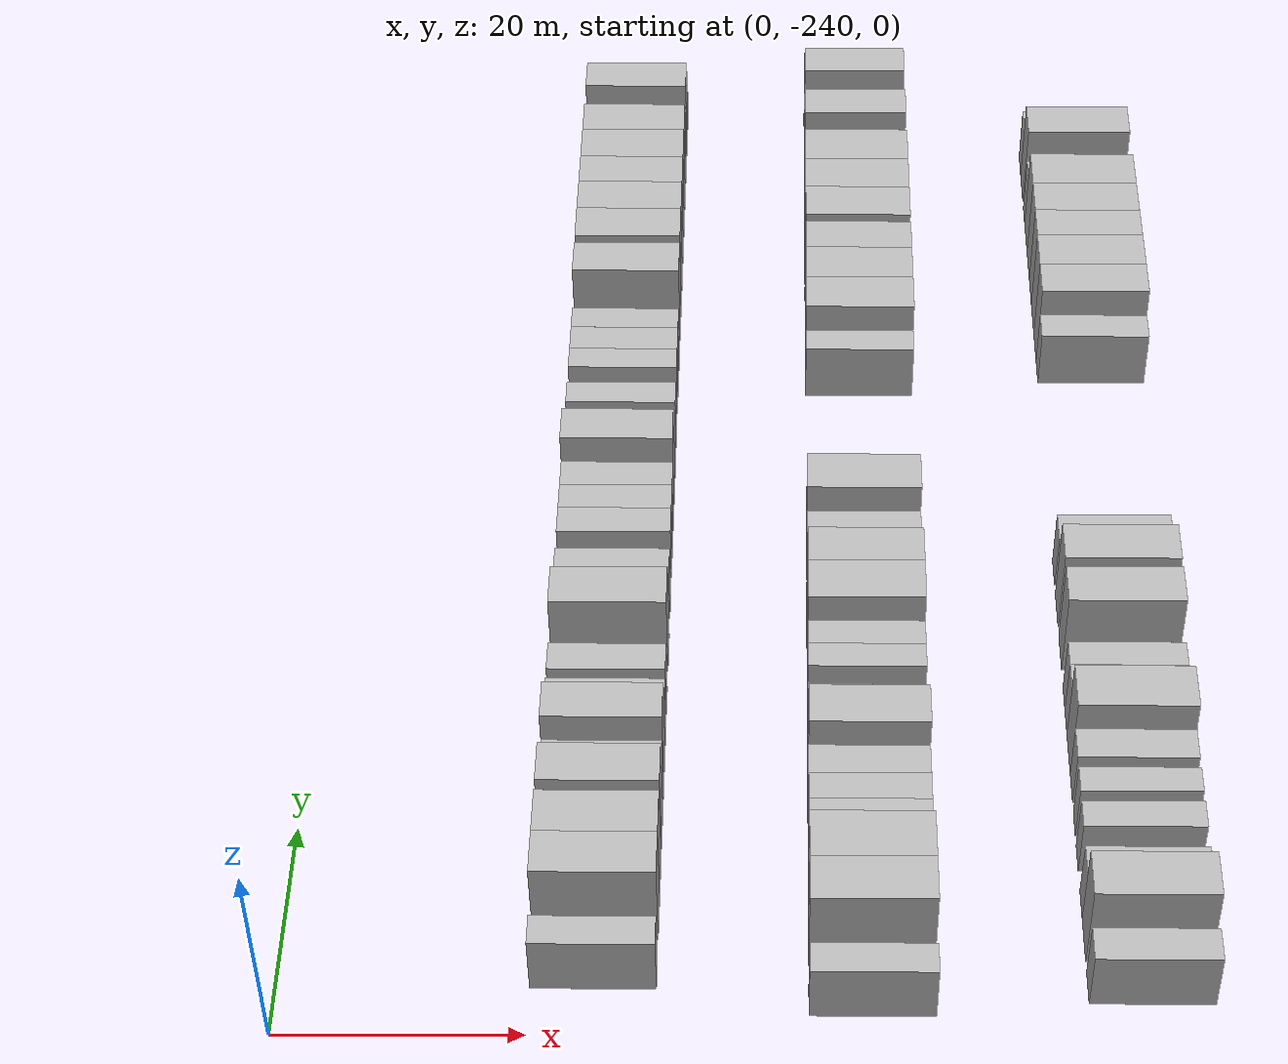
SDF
<sdf version="1.6">
 <world name="default">
  <model name="building_41">
   <static>1</static>
   <pose>25.0000 -234.2131 0 0.000000 0.000000 0.000000</pose>
   <link name="link">
    <pose>0 0 3.00 0 0 0</pose>
    <collision name="collision"><geometry><box><size>10.0000 2.6801 6.0000</size></box></geometry></collision>
    <visual name="visual">
     <cast_shadows>0</cast_shadows>
     <geometry><box><size>10.0000 2.6801 6.0000</size></box></geometry>
     <material>
      <script>
       <uri>model://HANNAS_wall/materials/scripts</uri>
       <uri>model://HANNAS_wall/materials/textures</uri>
       <name>vrc/HANNAS_wall</name>
      </script>
     </material>
    </visual>
   </link>
  </model>
  <model name="building_42">
   <static>1</static>
   <pose>25.0000 -228.8729 0 0.000000 0.000000 0.000000</pose>
   <link name="link">
    <pose>0 0 4.50 0 0 0</pose>
    <collision name="collision"><geometry><box><size>10.0000 4.0002 9.0000</size></box></geometry></collision>
    <visual name="visual">
     <cast_shadows>0</cast_shadows>
     <geometry><box><size>10.0000 4.0002 9.0000</size></box></geometry>
     <material>
      <script>
       <uri>model://HANNAS_wall/materials/scripts</uri>
       <uri>model://HANNAS_wall/materials/textures</uri>
       <name>vrc/HANNAS_wall</name>
      </script>
     </material>
    </visual>
   </link>
  </model>
  <model name="building_43">
   <static>1</static>
   <pose>25.0000 -224.8315 0 0.000000 0.000000 0.000000</pose>
   <link name="link">
    <pose>0 0 4.50 0 0 0</pose>
    <collision name="collision"><geometry><box><size>10.0000 4.0826 9.0000</size></box></geometry></collision>
    <visual name="visual">
     <cast_shadows>0</cast_shadows>
     <geometry><box><size>10.0000 4.0826 9.0000</size></box></geometry>
     <material>
      <script>
       <uri>model://HANNAS_wall/materials/scripts</uri>
       <uri>model://HANNAS_wall/materials/textures</uri>
       <name>vrc/HANNAS_wall</name>
      </script>
     </material>
    </visual>
   </link>
  </model>
  <model name="building_44">
   <static>1</static>
   <pose>25.0000 -219.8721 0 0.000000 0.000000 0.000000</pose>
   <link name="link">
    <pose>0 0 4.50 0 0 0</pose>
    <collision name="collision"><geometry><box><size>10.0000 3.8362 9.0000</size></box></geometry></collision>
    <visual name="visual">
     <cast_shadows>0</cast_shadows>
     <geometry><box><size>10.0000 3.8362 9.0000</size></box></geometry>
     <material>
      <script>
       <uri>model://HANNAS_wall/materials/scripts</uri>
       <uri>model://HANNAS_wall/materials/textures</uri>
       <name>vrc/HANNAS_wall</name>
      </script>
     </material>
    </visual>
   </link>
  </model>
  <model name="building_45">
   <static>1</static>
   <pose>25.0000 -216.5849 0 0.000000 0.000000 0.000000</pose>
   <link name="link">
    <pose>0 0 3.00 0 0 0</pose>
    <collision name="collision"><geometry><box><size>10.0000 2.7382 6.0000</size></box></geometry></collision>
    <visual name="visual">
     <cast_shadows>0</cast_shadows>
     <geometry><box><size>10.0000 2.7382 6.0000</size></box></geometry>
     <material>
      <script>
       <uri>model://HANNAS_wall/materials/scripts</uri>
       <uri>model://HANNAS_wall/materials/textures</uri>
       <name>vrc/HANNAS_wall</name>
      </script>
     </material>
    </visual>
   </link>
  </model>
  <model name="building_46">
   <static>1</static>
   <pose>25.0000 -213.3697 0 0.000000 0.000000 0.000000</pose>
   <link name="link">
    <pose>0 0 4.50 0 0 0</pose>
    <collision name="collision"><geometry><box><size>10.0000 3.6921 9.0000</size></box></geometry></collision>
    <visual name="visual">
     <cast_shadows>0</cast_shadows>
     <geometry><box><size>10.0000 3.6921 9.0000</size></box></geometry>
     <material>
      <script>
       <uri>model://HANNAS_wall/materials/scripts</uri>
       <uri>model://HANNAS_wall/materials/textures</uri>
       <name>vrc/HANNAS_wall</name>
      </script>
     </material>
    </visual>
   </link>
  </model>
  <model name="building_47">
   <static>1</static>
   <pose>25.0000 -210.0258 0 0.000000 0.000000 0.000000</pose>
   <link name="link">
    <pose>0 0 3.00 0 0 0</pose>
    <collision name="collision"><geometry><box><size>10.0000 2.9958 6.0000</size></box></geometry></collision>
    <visual name="visual">
     <cast_shadows>0</cast_shadows>
     <geometry><box><size>10.0000 2.9958 6.0000</size></box></geometry>
     <material>
      <script>
       <uri>model://HANNAS_wall/materials/scripts</uri>
       <uri>model://HANNAS_wall/materials/textures</uri>
       <name>vrc/HANNAS_wall</name>
      </script>
     </material>
    </visual>
   </link>
  </model>
  <model name="building_48">
   <static>1</static>
   <pose>25.0000 -206.0988 0 0.000000 0.000000 0.000000</pose>
   <link name="link">
    <pose>0 0 3.00 0 0 0</pose>
    <collision name="collision"><geometry><box><size>10.0000 2.8581 6.0000</size></box></geometry></collision>
    <visual name="visual">
     <cast_shadows>0</cast_shadows>
     <geometry><box><size>10.0000 2.8581 6.0000</size></box></geometry>
     <material>
      <script>
       <uri>model://HANNAS_wall/materials/scripts</uri>
       <uri>model://HANNAS_wall/materials/textures</uri>
       <name>vrc/HANNAS_wall</name>
      </script>
     </material>
    </visual>
   </link>
  </model>
  <model name="building_49">
   <static>1</static>
   <pose>25.0000 -200.6526 0 0.000000 0.000000 0.000000</pose>
   <link name="link">
    <pose>0 0 4.50 0 0 0</pose>
    <collision name="collision"><geometry><box><size>10.0000 4.0343 9.0000</size></box></geometry></collision>
    <visual name="visual">
     <cast_shadows>0</cast_shadows>
     <geometry><box><size>10.0000 4.0343 9.0000</size></box></geometry>
     <material>
      <script>
       <uri>model://HANNAS_wall/materials/scripts</uri>
       <uri>model://HANNAS_wall/materials/textures</uri>
       <name>vrc/HANNAS_wall</name>
      </script>
     </material>
    </visual>
   </link>
  </model>
  <model name="building_50">
   <static>1</static>
   <pose>25.0000 -195.1668 0 0.000000 0.000000 0.000000</pose>
   <link name="link">
    <pose>0 0 3.00 0 0 0</pose>
    <collision name="collision"><geometry><box><size>10.0000 2.9372 6.0000</size></box></geometry></collision>
    <visual name="visual">
     <cast_shadows>0</cast_shadows>
     <geometry><box><size>10.0000 2.9372 6.0000</size></box></geometry>
     <material>
      <script>
       <uri>model://HANNAS_wall/materials/scripts</uri>
       <uri>model://HANNAS_wall/materials/textures</uri>
       <name>vrc/HANNAS_wall</name>
      </script>
     </material>
    </visual>
   </link>
  </model>
  <model name="building_51">
   <static>1</static>
   <pose>25.0000 -190.2452 0 0.000000 0.000000 0.000000</pose>
   <link name="link">
    <pose>0 0 3.00 0 0 0</pose>
    <collision name="collision"><geometry><box><size>10.0000 2.9060 6.0000</size></box></geometry></collision>
    <visual name="visual">
     <cast_shadows>0</cast_shadows>
     <geometry><box><size>10.0000 2.9060 6.0000</size></box></geometry>
     <material>
      <script>
       <uri>model://HANNAS_wall/materials/scripts</uri>
       <uri>model://HANNAS_wall/materials/textures</uri>
       <name>vrc/HANNAS_wall</name>
      </script>
     </material>
    </visual>
   </link>
  </model>
  <model name="building_52">
   <static>1</static>
   <pose>25.0000 -187.3861 0 0.000000 0.000000 0.000000</pose>
   <link name="link">
    <pose>0 0 3.00 0 0 0</pose>
    <collision name="collision"><geometry><box><size>10.0000 2.8123 6.0000</size></box></geometry></collision>
    <visual name="visual">
     <cast_shadows>0</cast_shadows>
     <geometry><box><size>10.0000 2.8123 6.0000</size></box></geometry>
     <material>
      <script>
       <uri>model://HANNAS_wall/materials/scripts</uri>
       <uri>model://HANNAS_wall/materials/textures</uri>
       <name>vrc/HANNAS_wall</name>
      </script>
     </material>
    </visual>
   </link>
  </model>
  <model name="building_53">
   <static>1</static>
   <pose>25.0000 -184.5567 0 0.000000 0.000000 0.000000</pose>
   <link name="link">
    <pose>0 0 3.00 0 0 0</pose>
    <collision name="collision"><geometry><box><size>10.0000 2.8465 6.0000</size></box></geometry></collision>
    <visual name="visual">
     <cast_shadows>0</cast_shadows>
     <geometry><box><size>10.0000 2.8465 6.0000</size></box></geometry>
     <material>
      <script>
       <uri>model://HANNAS_wall/materials/scripts</uri>
       <uri>model://HANNAS_wall/materials/textures</uri>
       <name>vrc/HANNAS_wall</name>
      </script>
     </material>
    </visual>
   </link>
  </model>
  <model name="building_54">
   <static>1</static>
   <pose>25.0000 -181.2828 0 0.000000 0.000000 0.000000</pose>
   <link name="link">
    <pose>0 0 4.50 0 0 0</pose>
    <collision name="collision"><geometry><box><size>10.0000 3.7012 9.0000</size></box></geometry></collision>
    <visual name="visual">
     <cast_shadows>0</cast_shadows>
     <geometry><box><size>10.0000 3.7012 9.0000</size></box></geometry>
     <material>
      <script>
       <uri>model://HANNAS_wall/materials/scripts</uri>
       <uri>model://HANNAS_wall/materials/textures</uri>
       <name>vrc/HANNAS_wall</name>
      </script>
     </material>
    </visual>
   </link>
  </model>
  <model name="building_55">
   <static>1</static>
   <pose>25.0000 -177.9561 0 0.000000 0.000000 0.000000</pose>
   <link name="link">
    <pose>0 0 3.00 0 0 0</pose>
    <collision name="collision"><geometry><box><size>10.0000 2.9522 6.0000</size></box></geometry></collision>
    <visual name="visual">
     <cast_shadows>0</cast_shadows>
     <geometry><box><size>10.0000 2.9522 6.0000</size></box></geometry>
     <material>
      <script>
       <uri>model://HANNAS_wall/materials/scripts</uri>
       <uri>model://HANNAS_wall/materials/textures</uri>
       <name>vrc/HANNAS_wall</name>
      </script>
     </material>
    </visual>
   </link>
  </model>
  <model name="building_56">
   <static>1</static>
   <pose>25.0000 -174.1771 0 0.000000 0.000000 0.000000</pose>
   <link name="link">
    <pose>0 0 3.00 0 0 0</pose>
    <collision name="collision"><geometry><box><size>10.0000 2.6057 6.0000</size></box></geometry></collision>
    <visual name="visual">
     <cast_shadows>0</cast_shadows>
     <geometry><box><size>10.0000 2.6057 6.0000</size></box></geometry>
     <material>
      <script>
       <uri>model://HANNAS_wall/materials/scripts</uri>
       <uri>model://HANNAS_wall/materials/textures</uri>
       <name>vrc/HANNAS_wall</name>
      </script>
     </material>
    </visual>
   </link>
  </model>
  <model name="building_57">
   <static>1</static>
   <pose>25.0000 -169.6165 0 0.000000 0.000000 0.000000</pose>
   <link name="link">
    <pose>0 0 3.00 0 0 0</pose>
    <collision name="collision"><geometry><box><size>10.0000 2.5156 6.0000</size></box></geometry></collision>
    <visual name="visual">
     <cast_shadows>0</cast_shadows>
     <geometry><box><size>10.0000 2.5156 6.0000</size></box></geometry>
     <material>
      <script>
       <uri>model://HANNAS_wall/materials/scripts</uri>
       <uri>model://HANNAS_wall/materials/textures</uri>
       <name>vrc/HANNAS_wall</name>
      </script>
     </material>
    </visual>
   </link>
  </model>
  <model name="building_58">
   <static>1</static>
   <pose>25.0000 -166.9035 0 0.000000 0.000000 0.000000</pose>
   <link name="link">
    <pose>0 0 3.00 0 0 0</pose>
    <collision name="collision"><geometry><box><size>10.0000 2.9104 6.0000</size></box></geometry></collision>
    <visual name="visual">
     <cast_shadows>0</cast_shadows>
     <geometry><box><size>10.0000 2.9104 6.0000</size></box></geometry>
     <material>
      <script>
       <uri>model://HANNAS_wall/materials/scripts</uri>
       <uri>model://HANNAS_wall/materials/textures</uri>
       <name>vrc/HANNAS_wall</name>
      </script>
     </material>
    </visual>
   </link>
  </model>
  <model name="building_59">
   <static>1</static>
   <pose>25.0000 -164.1506 0 0.000000 0.000000 0.000000</pose>
   <link name="link">
    <pose>0 0 3.00 0 0 0</pose>
    <collision name="collision"><geometry><box><size>10.0000 2.5953 6.0000</size></box></geometry></collision>
    <visual name="visual">
     <cast_shadows>0</cast_shadows>
     <geometry><box><size>10.0000 2.5953 6.0000</size></box></geometry>
     <material>
      <script>
       <uri>model://HANNAS_wall/materials/scripts</uri>
       <uri>model://HANNAS_wall/materials/textures</uri>
       <name>vrc/HANNAS_wall</name>
      </script>
     </material>
    </visual>
   </link>
  </model>
  <model name="building_60">
   <static>1</static>
   <pose>25.0000 -158.8898 0 0.000000 0.000000 0.000000</pose>
   <link name="link">
    <pose>0 0 4.50 0 0 0</pose>
    <collision name="collision"><geometry><box><size>10.0000 3.9264 9.0000</size></box></geometry></collision>
    <visual name="visual">
     <cast_shadows>0</cast_shadows>
     <geometry><box><size>10.0000 3.9264 9.0000</size></box></geometry>
     <material>
      <script>
       <uri>model://HANNAS_wall/materials/scripts</uri>
       <uri>model://HANNAS_wall/materials/textures</uri>
       <name>vrc/HANNAS_wall</name>
      </script>
     </material>
    </visual>
   </link>
  </model>
  <model name="building_61">
   <static>1</static>
   <pose>25.0000 -153.9136 0 0.000000 0.000000 0.000000</pose>
   <link name="link">
    <pose>0 0 4.50 0 0 0</pose>
    <collision name="collision"><geometry><box><size>10.0000 4.0259 9.0000</size></box></geometry></collision>
    <visual name="visual">
     <cast_shadows>0</cast_shadows>
     <geometry><box><size>10.0000 4.0259 9.0000</size></box></geometry>
     <material>
      <script>
       <uri>model://HANNAS_wall/materials/scripts</uri>
       <uri>model://HANNAS_wall/materials/textures</uri>
       <name>vrc/HANNAS_wall</name>
      </script>
     </material>
    </visual>
   </link>
  </model>
  <model name="building_62">
   <static>1</static>
   <pose>25.0000 -149.9300 0 0.000000 0.000000 0.000000</pose>
   <link name="link">
    <pose>0 0 4.50 0 0 0</pose>
    <collision name="collision"><geometry><box><size>10.0000 3.9413 9.0000</size></box></geometry></collision>
    <visual name="visual">
     <cast_shadows>0</cast_shadows>
     <geometry><box><size>10.0000 3.9413 9.0000</size></box></geometry>
     <material>
      <script>
       <uri>model://HANNAS_wall/materials/scripts</uri>
       <uri>model://HANNAS_wall/materials/textures</uri>
       <name>vrc/HANNAS_wall</name>
      </script>
     </material>
    </visual>
   </link>
  </model>
  <model name="building_63">
   <static>1</static>
   <pose>25.0000 -146.0602 0 0.000000 0.000000 0.000000</pose>
   <link name="link">
    <pose>0 0 4.50 0 0 0</pose>
    <collision name="collision"><geometry><box><size>10.0000 3.7984 9.0000</size></box></geometry></collision>
    <visual name="visual">
     <cast_shadows>0</cast_shadows>
     <geometry><box><size>10.0000 3.7984 9.0000</size></box></geometry>
     <material>
      <script>
       <uri>model://HANNAS_wall/materials/scripts</uri>
       <uri>model://HANNAS_wall/materials/textures</uri>
       <name>vrc/HANNAS_wall</name>
      </script>
     </material>
    </visual>
   </link>
  </model>
  <model name="building_64">
   <static>1</static>
   <pose>25.0000 -142.1053 0 0.000000 0.000000 0.000000</pose>
   <link name="link">
    <pose>0 0 4.50 0 0 0</pose>
    <collision name="collision"><geometry><box><size>10.0000 4.1114 9.0000</size></box></geometry></collision>
    <visual name="visual">
     <cast_shadows>0</cast_shadows>
     <geometry><box><size>10.0000 4.1114 9.0000</size></box></geometry>
     <material>
      <script>
       <uri>model://HANNAS_wall/materials/scripts</uri>
       <uri>model://HANNAS_wall/materials/textures</uri>
       <name>vrc/HANNAS_wall</name>
      </script>
     </material>
    </visual>
   </link>
  </model>
  <model name="building_65">
   <static>1</static>
   <pose>25.0000 -138.0776 0 0.000000 0.000000 0.000000</pose>
   <link name="link">
    <pose>0 0 4.50 0 0 0</pose>
    <collision name="collision"><geometry><box><size>10.0000 3.9439 9.0000</size></box></geometry></collision>
    <visual name="visual">
     <cast_shadows>0</cast_shadows>
     <geometry><box><size>10.0000 3.9439 9.0000</size></box></geometry>
     <material>
      <script>
       <uri>model://HANNAS_wall/materials/scripts</uri>
       <uri>model://HANNAS_wall/materials/textures</uri>
       <name>vrc/HANNAS_wall</name>
      </script>
     </material>
    </visual>
   </link>
  </model>
  <model name="building_66">
   <static>1</static>
   <pose>25.0000 -134.6477 0 0.000000 0.000000 0.000000</pose>
   <link name="link">
    <pose>0 0 3.00 0 0 0</pose>
    <collision name="collision"><geometry><box><size>10.0000 2.9160 6.0000</size></box></geometry></collision>
    <visual name="visual">
     <cast_shadows>0</cast_shadows>
     <geometry><box><size>10.0000 2.9160 6.0000</size></box></geometry>
     <material>
      <script>
       <uri>model://HANNAS_wall/materials/scripts</uri>
       <uri>model://HANNAS_wall/materials/textures</uri>
       <name>vrc/HANNAS_wall</name>
      </script>
     </material>
    </visual>
   </link>
  </model>
  <model name="building_67">
   <static>1</static>
   <pose>25.0000 -131.3195 0 0.000000 0.000000 0.000000</pose>
   <link name="link">
    <pose>0 0 4.50 0 0 0</pose>
    <collision name="collision"><geometry><box><size>10.0000 3.7402 9.0000</size></box></geometry></collision>
    <visual name="visual">
     <cast_shadows>0</cast_shadows>
     <geometry><box><size>10.0000 3.7402 9.0000</size></box></geometry>
     <material>
      <script>
       <uri>model://HANNAS_wall/materials/scripts</uri>
       <uri>model://HANNAS_wall/materials/textures</uri>
       <name>vrc/HANNAS_wall</name>
      </script>
     </material>
    </visual>
   </link>
  </model>
  <model name="building_68">
   <static>1</static>
   <pose>25.0000 -128.2058 0 0.000000 0.000000 0.000000</pose>
   <link name="link">
    <pose>0 0 3.00 0 0 0</pose>
    <collision name="collision"><geometry><box><size>10.0000 2.4872 6.0000</size></box></geometry></collision>
    <visual name="visual">
     <cast_shadows>0</cast_shadows>
     <geometry><box><size>10.0000 2.4872 6.0000</size></box></geometry>
     <material>
      <script>
       <uri>model://HANNAS_wall/materials/scripts</uri>
       <uri>model://HANNAS_wall/materials/textures</uri>
       <name>vrc/HANNAS_wall</name>
      </script>
     </material>
    </visual>
   </link>
  </model>
  <model name="building_238">
   <static>1</static>
   <pose>47.0000 -236.5884 0 0.000000 0.000000 0.000000</pose>
   <link name="link">
    <pose>0 0 3.00 0 0 0</pose>
    <collision name="collision"><geometry><box><size>10.0000 2.7244 6.0000</size></box></geometry></collision>
    <visual name="visual">
     <cast_shadows>0</cast_shadows>
     <geometry><box><size>10.0000 2.7244 6.0000</size></box></geometry>
     <material>
      <script>
       <uri>model://HANNAS_wall/materials/scripts</uri>
       <uri>model://HANNAS_wall/materials/textures</uri>
       <name>vrc/HANNAS_wall</name>
      </script>
     </material>
    </visual>
   </link>
  </model>
  <model name="building_239">
   <static>1</static>
   <pose>47.0000 -231.1611 0 0.000000 0.000000 0.000000</pose>
   <link name="link">
    <pose>0 0 4.50 0 0 0</pose>
    <collision name="collision"><geometry><box><size>10.0000 4.1301 9.0000</size></box></geometry></collision>
    <visual name="visual">
     <cast_shadows>0</cast_shadows>
     <geometry><box><size>10.0000 4.1301 9.0000</size></box></geometry>
     <material>
      <script>
       <uri>model://HANNAS_wall/materials/scripts</uri>
       <uri>model://HANNAS_wall/materials/textures</uri>
       <name>vrc/HANNAS_wall</name>
      </script>
     </material>
    </visual>
   </link>
  </model>
  <model name="building_240">
   <static>1</static>
   <pose>47.0000 -226.8623 0 0.000000 0.000000 0.000000</pose>
   <link name="link">
    <pose>0 0 4.50 0 0 0</pose>
    <collision name="collision"><geometry><box><size>10.0000 4.4674 9.0000</size></box></geometry></collision>
    <visual name="visual">
     <cast_shadows>0</cast_shadows>
     <geometry><box><size>10.0000 4.4674 9.0000</size></box></geometry>
     <material>
      <script>
       <uri>model://HANNAS_wall/materials/scripts</uri>
       <uri>model://HANNAS_wall/materials/textures</uri>
       <name>vrc/HANNAS_wall</name>
      </script>
     </material>
    </visual>
   </link>
  </model>
  <model name="building_241">
   <static>1</static>
   <pose>47.0000 -222.3399 0 0.000000 0.000000 0.000000</pose>
   <link name="link">
    <pose>0 0 3.00 0 0 0</pose>
    <collision name="collision"><geometry><box><size>10.0000 2.5774 6.0000</size></box></geometry></collision>
    <visual name="visual">
     <cast_shadows>0</cast_shadows>
     <geometry><box><size>10.0000 2.5774 6.0000</size></box></geometry>
     <material>
      <script>
       <uri>model://HANNAS_wall/materials/scripts</uri>
       <uri>model://HANNAS_wall/materials/textures</uri>
       <name>vrc/HANNAS_wall</name>
      </script>
     </material>
    </visual>
   </link>
  </model>
  <model name="building_242">
   <static>1</static>
   <pose>47.0000 -219.7334 0 0.000000 0.000000 0.000000</pose>
   <link name="link">
    <pose>0 0 3.00 0 0 0</pose>
    <collision name="collision"><geometry><box><size>10.0000 2.6355 6.0000</size></box></geometry></collision>
    <visual name="visual">
     <cast_shadows>0</cast_shadows>
     <geometry><box><size>10.0000 2.6355 6.0000</size></box></geometry>
     <material>
      <script>
       <uri>model://HANNAS_wall/materials/scripts</uri>
       <uri>model://HANNAS_wall/materials/textures</uri>
       <name>vrc/HANNAS_wall</name>
      </script>
     </material>
    </visual>
   </link>
  </model>
  <model name="building_243">
   <static>1</static>
   <pose>47.0000 -216.9742 0 0.000000 0.000000 0.000000</pose>
   <link name="link">
    <pose>0 0 3.00 0 0 0</pose>
    <collision name="collision"><geometry><box><size>10.0000 2.8829 6.0000</size></box></geometry></collision>
    <visual name="visual">
     <cast_shadows>0</cast_shadows>
     <geometry><box><size>10.0000 2.8829 6.0000</size></box></geometry>
     <material>
      <script>
       <uri>model://HANNAS_wall/materials/scripts</uri>
       <uri>model://HANNAS_wall/materials/textures</uri>
       <name>vrc/HANNAS_wall</name>
      </script>
     </material>
    </visual>
   </link>
  </model>
  <model name="building_244">
   <static>1</static>
   <pose>47.0000 -213.5619 0 0.000000 0.000000 0.000000</pose>
   <link name="link">
    <pose>0 0 4.50 0 0 0</pose>
    <collision name="collision"><geometry><box><size>10.0000 3.9416 9.0000</size></box></geometry></collision>
    <visual name="visual">
     <cast_shadows>0</cast_shadows>
     <geometry><box><size>10.0000 3.9416 9.0000</size></box></geometry>
     <material>
      <script>
       <uri>model://HANNAS_wall/materials/scripts</uri>
       <uri>model://HANNAS_wall/materials/textures</uri>
       <name>vrc/HANNAS_wall</name>
      </script>
     </material>
    </visual>
   </link>
  </model>
  <model name="building_245">
   <static>1</static>
   <pose>47.0000 -210.2989 0 0.000000 0.000000 0.000000</pose>
   <link name="link">
    <pose>0 0 3.00 0 0 0</pose>
    <collision name="collision"><geometry><box><size>10.0000 2.5842 6.0000</size></box></geometry></collision>
    <visual name="visual">
     <cast_shadows>0</cast_shadows>
     <geometry><box><size>10.0000 2.5842 6.0000</size></box></geometry>
     <material>
      <script>
       <uri>model://HANNAS_wall/materials/scripts</uri>
       <uri>model://HANNAS_wall/materials/textures</uri>
       <name>vrc/HANNAS_wall</name>
      </script>
     </material>
    </visual>
   </link>
  </model>
  <model name="building_246">
   <static>1</static>
   <pose>47.0000 -205.7408 0 0.000000 0.000000 0.000000</pose>
   <link name="link">
    <pose>0 0 3.00 0 0 0</pose>
    <collision name="collision"><geometry><box><size>10.0000 2.5321 6.0000</size></box></geometry></collision>
    <visual name="visual">
     <cast_shadows>0</cast_shadows>
     <geometry><box><size>10.0000 2.5321 6.0000</size></box></geometry>
     <material>
      <script>
       <uri>model://HANNAS_wall/materials/scripts</uri>
       <uri>model://HANNAS_wall/materials/textures</uri>
       <name>vrc/HANNAS_wall</name>
      </script>
     </material>
    </visual>
   </link>
  </model>
  <model name="building_247">
   <static>1</static>
   <pose>47.0000 -203.1868 0 0.000000 0.000000 0.000000</pose>
   <link name="link">
    <pose>0 0 3.00 0 0 0</pose>
    <collision name="collision"><geometry><box><size>10.0000 2.5758 6.0000</size></box></geometry></collision>
    <visual name="visual">
     <cast_shadows>0</cast_shadows>
     <geometry><box><size>10.0000 2.5758 6.0000</size></box></geometry>
     <material>
      <script>
       <uri>model://HANNAS_wall/materials/scripts</uri>
       <uri>model://HANNAS_wall/materials/textures</uri>
       <name>vrc/HANNAS_wall</name>
      </script>
     </material>
    </visual>
   </link>
  </model>
  <model name="building_248">
   <static>1</static>
   <pose>47.0000 -199.7753 0 0.000000 0.000000 0.000000</pose>
   <link name="link">
    <pose>0 0 4.50 0 0 0</pose>
    <collision name="collision"><geometry><box><size>10.0000 4.2473 9.0000</size></box></geometry></collision>
    <visual name="visual">
     <cast_shadows>0</cast_shadows>
     <geometry><box><size>10.0000 4.2473 9.0000</size></box></geometry>
     <material>
      <script>
       <uri>model://HANNAS_wall/materials/scripts</uri>
       <uri>model://HANNAS_wall/materials/textures</uri>
       <name>vrc/HANNAS_wall</name>
      </script>
     </material>
    </visual>
   </link>
  </model>
  <model name="building_249">
   <static>1</static>
   <pose>47.0000 -195.7400 0 0.000000 0.000000 0.000000</pose>
   <link name="link">
    <pose>0 0 4.50 0 0 0</pose>
    <collision name="collision"><geometry><box><size>10.0000 3.8234 9.0000</size></box></geometry></collision>
    <visual name="visual">
     <cast_shadows>0</cast_shadows>
     <geometry><box><size>10.0000 3.8234 9.0000</size></box></geometry>
     <material>
      <script>
       <uri>model://HANNAS_wall/materials/scripts</uri>
       <uri>model://HANNAS_wall/materials/textures</uri>
       <name>vrc/HANNAS_wall</name>
      </script>
     </material>
    </visual>
   </link>
  </model>
  <model name="building_250">
   <static>1</static>
   <pose>47.0000 -190.4297 0 0.000000 0.000000 0.000000</pose>
   <link name="link">
    <pose>0 0 3.00 0 0 0</pose>
    <collision name="collision"><geometry><box><size>10.0000 2.7971 6.0000</size></box></geometry></collision>
    <visual name="visual">
     <cast_shadows>0</cast_shadows>
     <geometry><box><size>10.0000 2.7971 6.0000</size></box></geometry>
     <material>
      <script>
       <uri>model://HANNAS_wall/materials/scripts</uri>
       <uri>model://HANNAS_wall/materials/textures</uri>
       <name>vrc/HANNAS_wall</name>
      </script>
     </material>
    </visual>
   </link>
  </model>
  <model name="building_251">
   <static>1</static>
   <pose>47.0000 -186.9717 0 0.000000 0.000000 0.000000</pose>
   <link name="link">
    <pose>0 0 4.50 0 0 0</pose>
    <collision name="collision"><geometry><box><size>10.0000 4.1189 9.0000</size></box></geometry></collision>
    <visual name="visual">
     <cast_shadows>0</cast_shadows>
     <geometry><box><size>10.0000 4.1189 9.0000</size></box></geometry>
     <material>
      <script>
       <uri>model://HANNAS_wall/materials/scripts</uri>
       <uri>model://HANNAS_wall/materials/textures</uri>
       <name>vrc/HANNAS_wall</name>
      </script>
     </material>
    </visual>
   </link>
  </model>
  <model name="building_252">
   <static>1</static>
   <pose>47.0000 -166.9960 0 0.000000 0.000000 0.000000</pose>
   <link name="link">
    <pose>0 0 3.00 0 0 0</pose>
    <collision name="collision"><geometry><box><size>10.0000 2.6108 6.0000</size></box></geometry></collision>
    <visual name="visual">
     <cast_shadows>0</cast_shadows>
     <geometry><box><size>10.0000 2.6108 6.0000</size></box></geometry>
     <material>
      <script>
       <uri>model://HANNAS_wall/materials/scripts</uri>
       <uri>model://HANNAS_wall/materials/textures</uri>
       <name>vrc/HANNAS_wall</name>
      </script>
     </material>
    </visual>
   </link>
  </model>
  <model name="building_253">
   <static>1</static>
   <pose>47.0000 -163.6091 0 0.000000 0.000000 0.000000</pose>
   <link name="link">
    <pose>0 0 4.50 0 0 0</pose>
    <collision name="collision"><geometry><box><size>10.0000 4.1630 9.0000</size></box></geometry></collision>
    <visual name="visual">
     <cast_shadows>0</cast_shadows>
     <geometry><box><size>10.0000 4.1630 9.0000</size></box></geometry>
     <material>
      <script>
       <uri>model://HANNAS_wall/materials/scripts</uri>
       <uri>model://HANNAS_wall/materials/textures</uri>
       <name>vrc/HANNAS_wall</name>
      </script>
     </material>
    </visual>
   </link>
  </model>
  <model name="building_254">
   <static>1</static>
   <pose>47.0000 -159.4356 0 0.000000 0.000000 0.000000</pose>
   <link name="link">
    <pose>0 0 4.50 0 0 0</pose>
    <collision name="collision"><geometry><box><size>10.0000 4.1840 9.0000</size></box></geometry></collision>
    <visual name="visual">
     <cast_shadows>0</cast_shadows>
     <geometry><box><size>10.0000 4.1840 9.0000</size></box></geometry>
     <material>
      <script>
       <uri>model://HANNAS_wall/materials/scripts</uri>
       <uri>model://HANNAS_wall/materials/textures</uri>
       <name>vrc/HANNAS_wall</name>
      </script>
     </material>
    </visual>
   </link>
  </model>
  <model name="building_255">
   <static>1</static>
   <pose>47.0000 -155.5027 0 0.000000 0.000000 0.000000</pose>
   <link name="link">
    <pose>0 0 4.50 0 0 0</pose>
    <collision name="collision"><geometry><box><size>10.0000 3.6817 9.0000</size></box></geometry></collision>
    <visual name="visual">
     <cast_shadows>0</cast_shadows>
     <geometry><box><size>10.0000 3.6817 9.0000</size></box></geometry>
     <material>
      <script>
       <uri>model://HANNAS_wall/materials/scripts</uri>
       <uri>model://HANNAS_wall/materials/textures</uri>
       <name>vrc/HANNAS_wall</name>
      </script>
     </material>
    </visual>
   </link>
  </model>
  <model name="building_256">
   <static>1</static>
   <pose>47.0000 -150.5961 0 0.000000 0.000000 0.000000</pose>
   <link name="link">
    <pose>0 0 4.50 0 0 0</pose>
    <collision name="collision"><geometry><box><size>10.0000 4.1316 9.0000</size></box></geometry></collision>
    <visual name="visual">
     <cast_shadows>0</cast_shadows>
     <geometry><box><size>10.0000 4.1316 9.0000</size></box></geometry>
     <material>
      <script>
       <uri>model://HANNAS_wall/materials/scripts</uri>
       <uri>model://HANNAS_wall/materials/textures</uri>
       <name>vrc/HANNAS_wall</name>
      </script>
     </material>
    </visual>
   </link>
  </model>
  <model name="building_257">
   <static>1</static>
   <pose>47.0000 -146.4375 0 0.000000 0.000000 0.000000</pose>
   <link name="link">
    <pose>0 0 4.50 0 0 0</pose>
    <collision name="collision"><geometry><box><size>10.0000 4.1856 9.0000</size></box></geometry></collision>
    <visual name="visual">
     <cast_shadows>0</cast_shadows>
     <geometry><box><size>10.0000 4.1856 9.0000</size></box></geometry>
     <material>
      <script>
       <uri>model://HANNAS_wall/materials/scripts</uri>
       <uri>model://HANNAS_wall/materials/textures</uri>
       <name>vrc/HANNAS_wall</name>
      </script>
     </material>
    </visual>
   </link>
  </model>
  <model name="building_258">
   <static>1</static>
   <pose>47.0000 -142.1067 0 0.000000 0.000000 0.000000</pose>
   <link name="link">
    <pose>0 0 4.50 0 0 0</pose>
    <collision name="collision"><geometry><box><size>10.0000 4.4760 9.0000</size></box></geometry></collision>
    <visual name="visual">
     <cast_shadows>0</cast_shadows>
     <geometry><box><size>10.0000 4.4760 9.0000</size></box></geometry>
     <material>
      <script>
       <uri>model://HANNAS_wall/materials/scripts</uri>
       <uri>model://HANNAS_wall/materials/textures</uri>
       <name>vrc/HANNAS_wall</name>
      </script>
     </material>
    </visual>
   </link>
  </model>
  <model name="building_259">
   <static>1</static>
   <pose>47.0000 -138.5502 0 0.000000 0.000000 0.000000</pose>
   <link name="link">
    <pose>0 0 3.00 0 0 0</pose>
    <collision name="collision"><geometry><box><size>10.0000 2.6370 6.0000</size></box></geometry></collision>
    <visual name="visual">
     <cast_shadows>0</cast_shadows>
     <geometry><box><size>10.0000 2.6370 6.0000</size></box></geometry>
     <material>
      <script>
       <uri>model://HANNAS_wall/materials/scripts</uri>
       <uri>model://HANNAS_wall/materials/textures</uri>
       <name>vrc/HANNAS_wall</name>
      </script>
     </material>
    </visual>
   </link>
  </model>
  <model name="building_260">
   <static>1</static>
   <pose>47.0000 -135.3782 0 0.000000 0.000000 0.000000</pose>
   <link name="link">
    <pose>0 0 4.50 0 0 0</pose>
    <collision name="collision"><geometry><box><size>10.0000 3.7070 9.0000</size></box></geometry></collision>
    <visual name="visual">
     <cast_shadows>0</cast_shadows>
     <geometry><box><size>10.0000 3.7070 9.0000</size></box></geometry>
     <material>
      <script>
       <uri>model://HANNAS_wall/materials/scripts</uri>
       <uri>model://HANNAS_wall/materials/textures</uri>
       <name>vrc/HANNAS_wall</name>
      </script>
     </material>
    </visual>
   </link>
  </model>
  <model name="building_261">
   <static>1</static>
   <pose>47.0000 -132.0292 0 0.000000 0.000000 0.000000</pose>
   <link name="link">
    <pose>0 0 3.00 0 0 0</pose>
    <collision name="collision"><geometry><box><size>10.0000 2.9909 6.0000</size></box></geometry></collision>
    <visual name="visual">
     <cast_shadows>0</cast_shadows>
     <geometry><box><size>10.0000 2.9909 6.0000</size></box></geometry>
     <material>
      <script>
       <uri>model://HANNAS_wall/materials/scripts</uri>
       <uri>model://HANNAS_wall/materials/textures</uri>
       <name>vrc/HANNAS_wall</name>
      </script>
     </material>
    </visual>
   </link>
  </model>
  <model name="building_262">
   <static>1</static>
   <pose>47.0000 -128.6882 0 0.000000 0.000000 0.000000</pose>
   <link name="link">
    <pose>0 0 4.50 0 0 0</pose>
    <collision name="collision"><geometry><box><size>10.0000 3.6912 9.0000</size></box></geometry></collision>
    <visual name="visual">
     <cast_shadows>0</cast_shadows>
     <geometry><box><size>10.0000 3.6912 9.0000</size></box></geometry>
     <material>
      <script>
       <uri>model://HANNAS_wall/materials/scripts</uri>
       <uri>model://HANNAS_wall/materials/textures</uri>
       <name>vrc/HANNAS_wall</name>
      </script>
     </material>
    </visual>
   </link>
  </model>
  <model name="building_420">
   <static>1</static>
   <pose>69.0000 -235.1509 0 0.000000 0.000000 0.000000</pose>
   <link name="link">
    <pose>0 0 3.00 0 0 0</pose>
    <collision name="collision"><geometry><box><size>10.0000 2.9880 6.0000</size></box></geometry></collision>
    <visual name="visual">
     <cast_shadows>0</cast_shadows>
     <geometry><box><size>10.0000 2.9880 6.0000</size></box></geometry>
     <material>
      <script>
       <uri>model://HANNAS_wall/materials/scripts</uri>
       <uri>model://HANNAS_wall/materials/textures</uri>
       <name>vrc/HANNAS_wall</name>
      </script>
     </material>
    </visual>
   </link>
  </model>
  <model name="building_421">
   <static>1</static>
   <pose>69.0000 -230.5720 0 0.000000 0.000000 0.000000</pose>
   <link name="link">
    <pose>0 0 4.50 0 0 0</pose>
    <collision name="collision"><geometry><box><size>10.0000 4.1699 9.0000</size></box></geometry></collision>
    <visual name="visual">
     <cast_shadows>0</cast_shadows>
     <geometry><box><size>10.0000 4.1699 9.0000</size></box></geometry>
     <material>
      <script>
       <uri>model://HANNAS_wall/materials/scripts</uri>
       <uri>model://HANNAS_wall/materials/textures</uri>
       <name>vrc/HANNAS_wall</name>
      </script>
     </material>
    </visual>
   </link>
  </model>
  <model name="building_422">
   <static>1</static>
   <pose>69.0000 -227.1068 0 0.000000 0.000000 0.000000</pose>
   <link name="link">
    <pose>0 0 3.00 0 0 0</pose>
    <collision name="collision"><geometry><box><size>10.0000 2.7604 6.0000</size></box></geometry></collision>
    <visual name="visual">
     <cast_shadows>0</cast_shadows>
     <geometry><box><size>10.0000 2.7604 6.0000</size></box></geometry>
     <material>
      <script>
       <uri>model://HANNAS_wall/materials/scripts</uri>
       <uri>model://HANNAS_wall/materials/textures</uri>
       <name>vrc/HANNAS_wall</name>
      </script>
     </material>
    </visual>
   </link>
  </model>
  <model name="building_423">
   <static>1</static>
   <pose>69.0000 -222.4321 0 0.000000 0.000000 0.000000</pose>
   <link name="link">
    <pose>0 0 3.00 0 0 0</pose>
    <collision name="collision"><geometry><box><size>10.0000 2.5891 6.0000</size></box></geometry></collision>
    <visual name="visual">
     <cast_shadows>0</cast_shadows>
     <geometry><box><size>10.0000 2.5891 6.0000</size></box></geometry>
     <material>
      <script>
       <uri>model://HANNAS_wall/materials/scripts</uri>
       <uri>model://HANNAS_wall/materials/textures</uri>
       <name>vrc/HANNAS_wall</name>
      </script>
     </material>
    </visual>
   </link>
  </model>
  <model name="building_424">
   <static>1</static>
   <pose>69.0000 -218.8948 0 0.000000 0.000000 0.000000</pose>
   <link name="link">
    <pose>0 0 3.00 0 0 0</pose>
    <collision name="collision"><geometry><box><size>10.0000 2.4855 6.0000</size></box></geometry></collision>
    <visual name="visual">
     <cast_shadows>0</cast_shadows>
     <geometry><box><size>10.0000 2.4855 6.0000</size></box></geometry>
     <material>
      <script>
       <uri>model://HANNAS_wall/materials/scripts</uri>
       <uri>model://HANNAS_wall/materials/textures</uri>
       <name>vrc/HANNAS_wall</name>
      </script>
     </material>
    </visual>
   </link>
  </model>
  <model name="building_425">
   <static>1</static>
   <pose>69.0000 -215.1544 0 0.000000 0.000000 0.000000</pose>
   <link name="link">
    <pose>0 0 3.00 0 0 0</pose>
    <collision name="collision"><geometry><box><size>10.0000 2.9952 6.0000</size></box></geometry></collision>
    <visual name="visual">
     <cast_shadows>0</cast_shadows>
     <geometry><box><size>10.0000 2.9952 6.0000</size></box></geometry>
     <material>
      <script>
       <uri>model://HANNAS_wall/materials/scripts</uri>
       <uri>model://HANNAS_wall/materials/textures</uri>
       <name>vrc/HANNAS_wall</name>
      </script>
     </material>
    </visual>
   </link>
  </model>
  <model name="building_426">
   <static>1</static>
   <pose>69.0000 -211.4967 0 0.000000 0.000000 0.000000</pose>
   <link name="link">
    <pose>0 0 4.50 0 0 0</pose>
    <collision name="collision"><geometry><box><size>10.0000 4.3202 9.0000</size></box></geometry></collision>
    <visual name="visual">
     <cast_shadows>0</cast_shadows>
     <geometry><box><size>10.0000 4.3202 9.0000</size></box></geometry>
     <material>
      <script>
       <uri>model://HANNAS_wall/materials/scripts</uri>
       <uri>model://HANNAS_wall/materials/textures</uri>
       <name>vrc/HANNAS_wall</name>
      </script>
     </material>
    </visual>
   </link>
  </model>
  <model name="building_427">
   <static>1</static>
   <pose>69.0000 -208.0073 0 0.000000 0.000000 0.000000</pose>
   <link name="link">
    <pose>0 0 3.00 0 0 0</pose>
    <collision name="collision"><geometry><box><size>10.0000 2.6585 6.0000</size></box></geometry></collision>
    <visual name="visual">
     <cast_shadows>0</cast_shadows>
     <geometry><box><size>10.0000 2.6585 6.0000</size></box></geometry>
     <material>
      <script>
       <uri>model://HANNAS_wall/materials/scripts</uri>
       <uri>model://HANNAS_wall/materials/textures</uri>
       <name>vrc/HANNAS_wall</name>
      </script>
     </material>
    </visual>
   </link>
  </model>
  <model name="building_428">
   <static>1</static>
   <pose>69.0000 -205.4085 0 0.000000 0.000000 0.000000</pose>
   <link name="link">
    <pose>0 0 3.00 0 0 0</pose>
    <collision name="collision"><geometry><box><size>10.0000 2.5392 6.0000</size></box></geometry></collision>
    <visual name="visual">
     <cast_shadows>0</cast_shadows>
     <geometry><box><size>10.0000 2.5392 6.0000</size></box></geometry>
     <material>
      <script>
       <uri>model://HANNAS_wall/materials/scripts</uri>
       <uri>model://HANNAS_wall/materials/textures</uri>
       <name>vrc/HANNAS_wall</name>
      </script>
     </material>
    </visual>
   </link>
  </model>
  <model name="building_429">
   <static>1</static>
   <pose>69.0000 -200.1948 0 0.000000 0.000000 0.000000</pose>
   <link name="link">
    <pose>0 0 4.50 0 0 0</pose>
    <collision name="collision"><geometry><box><size>10.0000 3.8882 9.0000</size></box></geometry></collision>
    <visual name="visual">
     <cast_shadows>0</cast_shadows>
     <geometry><box><size>10.0000 3.8882 9.0000</size></box></geometry>
     <material>
      <script>
       <uri>model://HANNAS_wall/materials/scripts</uri>
       <uri>model://HANNAS_wall/materials/textures</uri>
       <name>vrc/HANNAS_wall</name>
      </script>
     </material>
    </visual>
   </link>
  </model>
  <model name="building_430">
   <static>1</static>
   <pose>69.0000 -195.2744 0 0.000000 0.000000 0.000000</pose>
   <link name="link">
    <pose>0 0 4.50 0 0 0</pose>
    <collision name="collision"><geometry><box><size>10.0000 3.9527 9.0000</size></box></geometry></collision>
    <visual name="visual">
     <cast_shadows>0</cast_shadows>
     <geometry><box><size>10.0000 3.9527 9.0000</size></box></geometry>
     <material>
      <script>
       <uri>model://HANNAS_wall/materials/scripts</uri>
       <uri>model://HANNAS_wall/materials/textures</uri>
       <name>vrc/HANNAS_wall</name>
      </script>
     </material>
    </visual>
   </link>
  </model>
  <model name="building_431">
   <static>1</static>
   <pose>69.0000 -190.8033 0 0.000000 0.000000 0.000000</pose>
   <link name="link">
    <pose>0 0 3.00 0 0 0</pose>
    <collision name="collision"><geometry><box><size>10.0000 2.9895 6.0000</size></box></geometry></collision>
    <visual name="visual">
     <cast_shadows>0</cast_shadows>
     <geometry><box><size>10.0000 2.9895 6.0000</size></box></geometry>
     <material>
      <script>
       <uri>model://HANNAS_wall/materials/scripts</uri>
       <uri>model://HANNAS_wall/materials/textures</uri>
       <name>vrc/HANNAS_wall</name>
      </script>
     </material>
    </visual>
   </link>
  </model>
  <model name="building_432">
   <static>1</static>
   <pose>69.0000 -164.8912 0 0.000000 0.000000 0.000000</pose>
   <link name="link">
    <pose>0 0 3.00 0 0 0</pose>
    <collision name="collision"><geometry><box><size>10.0000 2.9449 6.0000</size></box></geometry></collision>
    <visual name="visual">
     <cast_shadows>0</cast_shadows>
     <geometry><box><size>10.0000 2.9449 6.0000</size></box></geometry>
     <material>
      <script>
       <uri>model://HANNAS_wall/materials/scripts</uri>
       <uri>model://HANNAS_wall/materials/textures</uri>
       <name>vrc/HANNAS_wall</name>
      </script>
     </material>
    </visual>
   </link>
  </model>
  <model name="building_433">
   <static>1</static>
   <pose>69.0000 -161.5094 0 0.000000 0.000000 0.000000</pose>
   <link name="link">
    <pose>0 0 4.50 0 0 0</pose>
    <collision name="collision"><geometry><box><size>10.0000 3.8187 9.0000</size></box></geometry></collision>
    <visual name="visual">
     <cast_shadows>0</cast_shadows>
     <geometry><box><size>10.0000 3.8187 9.0000</size></box></geometry>
     <material>
      <script>
       <uri>model://HANNAS_wall/materials/scripts</uri>
       <uri>model://HANNAS_wall/materials/textures</uri>
       <name>vrc/HANNAS_wall</name>
      </script>
     </material>
    </visual>
   </link>
  </model>
  <model name="building_434">
   <static>1</static>
   <pose>69.0000 -157.5068 0 0.000000 0.000000 0.000000</pose>
   <link name="link">
    <pose>0 0 4.50 0 0 0</pose>
    <collision name="collision"><geometry><box><size>10.0000 4.1864 9.0000</size></box></geometry></collision>
    <visual name="visual">
     <cast_shadows>0</cast_shadows>
     <geometry><box><size>10.0000 4.1864 9.0000</size></box></geometry>
     <material>
      <script>
       <uri>model://HANNAS_wall/materials/scripts</uri>
       <uri>model://HANNAS_wall/materials/textures</uri>
       <name>vrc/HANNAS_wall</name>
      </script>
     </material>
    </visual>
   </link>
  </model>
  <model name="building_435">
   <static>1</static>
   <pose>69.0000 -153.6127 0 0.000000 0.000000 0.000000</pose>
   <link name="link">
    <pose>0 0 4.50 0 0 0</pose>
    <collision name="collision"><geometry><box><size>10.0000 3.6018 9.0000</size></box></geometry></collision>
    <visual name="visual">
     <cast_shadows>0</cast_shadows>
     <geometry><box><size>10.0000 3.6018 9.0000</size></box></geometry>
     <material>
      <script>
       <uri>model://HANNAS_wall/materials/scripts</uri>
       <uri>model://HANNAS_wall/materials/textures</uri>
       <name>vrc/HANNAS_wall</name>
      </script>
     </material>
    </visual>
   </link>
  </model>
  <model name="building_436">
   <static>1</static>
   <pose>69.0000 -149.8222 0 0.000000 0.000000 0.000000</pose>
   <link name="link">
    <pose>0 0 4.50 0 0 0</pose>
    <collision name="collision"><geometry><box><size>10.0000 3.9793 9.0000</size></box></geometry></collision>
    <visual name="visual">
     <cast_shadows>0</cast_shadows>
     <geometry><box><size>10.0000 3.9793 9.0000</size></box></geometry>
     <material>
      <script>
       <uri>model://HANNAS_wall/materials/scripts</uri>
       <uri>model://HANNAS_wall/materials/textures</uri>
       <name>vrc/HANNAS_wall</name>
      </script>
     </material>
    </visual>
   </link>
  </model>
  <model name="building_437">
   <static>1</static>
   <pose>69.0000 -145.6535 0 0.000000 0.000000 0.000000</pose>
   <link name="link">
    <pose>0 0 4.50 0 0 0</pose>
    <collision name="collision"><geometry><box><size>10.0000 4.3581 9.0000</size></box></geometry></collision>
    <visual name="visual">
     <cast_shadows>0</cast_shadows>
     <geometry><box><size>10.0000 4.3581 9.0000</size></box></geometry>
     <material>
      <script>
       <uri>model://HANNAS_wall/materials/scripts</uri>
       <uri>model://HANNAS_wall/materials/textures</uri>
       <name>vrc/HANNAS_wall</name>
      </script>
     </material>
    </visual>
   </link>
  </model>
  <model name="building_438">
   <static>1</static>
   <pose>69.0000 -142.2736 0 0.000000 0.000000 0.000000</pose>
   <link name="link">
    <pose>0 0 3.00 0 0 0</pose>
    <collision name="collision"><geometry><box><size>10.0000 2.4017 6.0000</size></box></geometry></collision>
    <visual name="visual">
     <cast_shadows>0</cast_shadows>
     <geometry><box><size>10.0000 2.4017 6.0000</size></box></geometry>
     <material>
      <script>
       <uri>model://HANNAS_wall/materials/scripts</uri>
       <uri>model://HANNAS_wall/materials/textures</uri>
       <name>vrc/HANNAS_wall</name>
      </script>
     </material>
    </visual>
   </link>
  </model>
  <model name="building_439">
   <static>1</static>
   <pose>69.0000 -138.0880 0 0.000000 0.000000 0.000000</pose>
   <link name="link">
    <pose>0 0 4.50 0 0 0</pose>
    <collision name="collision"><geometry><box><size>10.0000 3.9696 9.0000</size></box></geometry></collision>
    <visual name="visual">
     <cast_shadows>0</cast_shadows>
     <geometry><box><size>10.0000 3.9696 9.0000</size></box></geometry>
     <material>
      <script>
       <uri>model://HANNAS_wall/materials/scripts</uri>
       <uri>model://HANNAS_wall/materials/textures</uri>
       <name>vrc/HANNAS_wall</name>
      </script>
     </material>
    </visual>
   </link>
  </model>
  <model name="building_440">
   <static>1</static>
   <pose>69.0000 -134.6426 0 0.000000 0.000000 0.000000</pose>
   <link name="link">
    <pose>0 0 3.00 0 0 0</pose>
    <collision name="collision"><geometry><box><size>10.0000 2.9212 6.0000</size></box></geometry></collision>
    <visual name="visual">
     <cast_shadows>0</cast_shadows>
     <geometry><box><size>10.0000 2.9212 6.0000</size></box></geometry>
     <material>
      <script>
       <uri>model://HANNAS_wall/materials/scripts</uri>
       <uri>model://HANNAS_wall/materials/textures</uri>
       <name>vrc/HANNAS_wall</name>
      </script>
     </material>
    </visual>
   </link>
  </model>
 </world>
</sdf>
